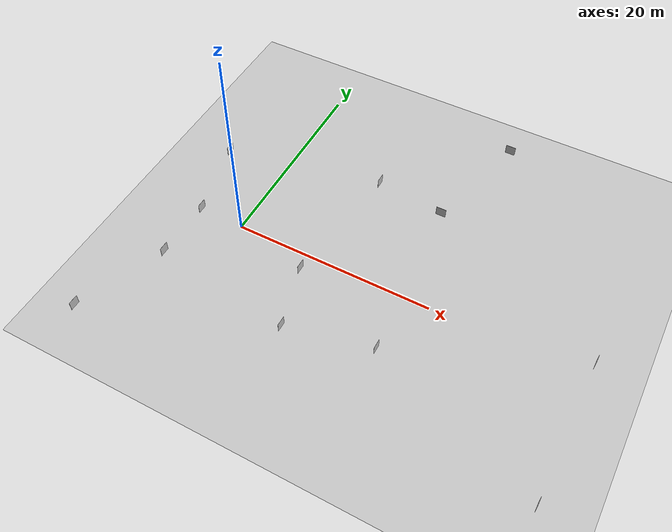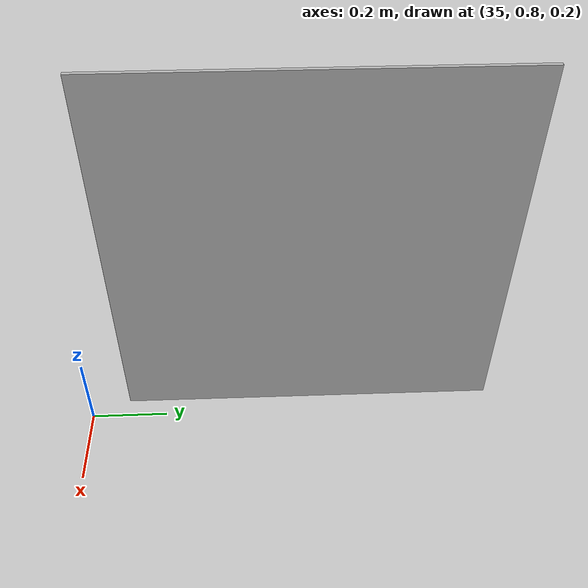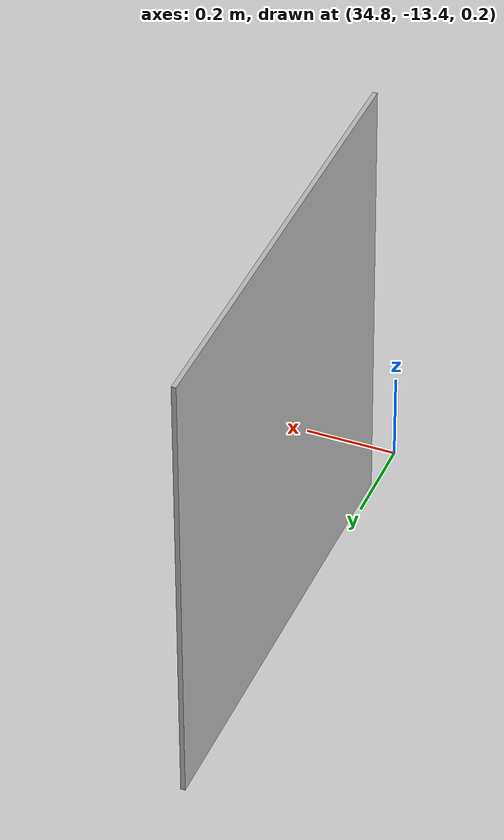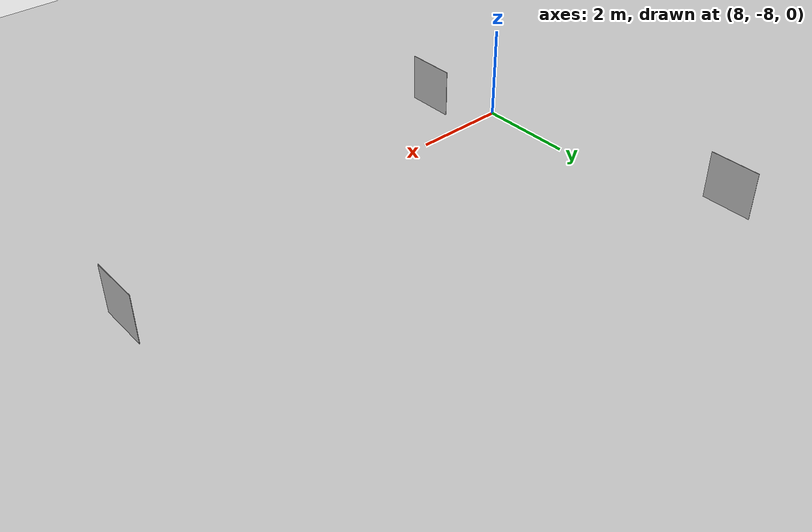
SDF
<sdf version="1.7">
 <world name="default">
  <light name="sun" type="directional">
   <pose>0 0 10 0 -0 0</pose>
   <diffuse>0.8 0.8 0.8 1</diffuse>
   <specular>0.2 0.2 0.2 1</specular>
   <attenuation>
    <range>1000</range>
    <constant>0.9</constant>
    <linear>0.01</linear>
    <quadratic>0.001</quadratic>
   </attenuation>
   <direction>-0.5 0.1 -0.9</direction>
   <spot><inner_angle>0</inner_angle><outer_angle>0</outer_angle><falloff>0</falloff></spot>
  </light>
  <model name="ground_plane">
   <static>1</static>
   <link name="link">
    <collision name="collision">
     <geometry><plane><normal>0 0 1</normal><size>100 100</size></plane></geometry>
     <surface>
      <contact><collide_bitmask>65535</collide_bitmask></contact>
      <friction><ode><mu>100</mu><mu2>50</mu2></ode></friction>
     </surface>
    </collision>
    <visual name="visual">
     <cast_shadows>0</cast_shadows>
     <geometry><plane><normal>0 0 1</normal><size>100 100</size></plane></geometry>
     <material>
      <script><uri>file://media/materials/scripts/gazebo.material</uri><name>Gazebo/Grey</name></script>
     </material>
    </visual>
   </link>
  </model>
  <gravity>0 0 -9.8</gravity>
  <magnetic_field>6e-06 2.3e-05 -4.2e-05</magnetic_field>
  <atmosphere type="adiabatic"/>
  <physics type="ode">
   <max_step_size>0.001</max_step_size>
   <real_time_factor>1</real_time_factor>
   <real_time_update_rate>1000</real_time_update_rate>
  </physics>
  <scene><ambient>0.4 0.4 0.4 1</ambient><background>0.7 0.7 0.7 1</background><shadows>1</shadows></scene>
  <spherical_coordinates>
   <surface_model>EARTH_WGS84</surface_model>
   <latitude_deg>0</latitude_deg>
   <longitude_deg>0</longitude_deg>
   <elevation>0</elevation>
   <heading_deg>0</heading_deg>
  </spherical_coordinates>
  <model name="Apriltag36_11_00000">
   <link name="main">
    <visual name="main_Visual">
     <geometry><box><size>1 1 0.01</size></box></geometry>
     <material>
      <script>
       <uri>model://Apriltag36_11_00000/materials/scripts</uri>
       <uri>model://Apriltag36_11_00000/materials/textures</uri>
       <name>Apriltag36_11_00000</name>
      </script>
     </material>
    </visual>
   </link>
   <static>1</static>
   <pose>7.8538 -2.0818 1.02235 3.14159 -1.57079 3.14159</pose>
  </model>
  <model name="Apriltag36_11_00001">
   <link name="main">
    <visual name="main_Visual">
     <geometry><box><size>1 1 0.01</size></box></geometry>
     <material>
      <script>
       <uri>model://Apriltag36_11_00001/materials/scripts</uri>
       <uri>model://Apriltag36_11_00001/materials/textures</uri>
       <name>Apriltag36_11_00001</name>
      </script>
     </material>
    </visual>
   </link>
   <static>1</static>
   <pose>17.8928 -6.47652 1.09329 3.14159 -1.57079 3.14159</pose>
  </model>
  <model name="Apriltag36_11_00002">
   <link name="main">
    <visual name="main_Visual">
     <geometry><box><size>1 1 0.01</size></box></geometry>
     <material>
      <script>
       <uri>model://Apriltag36_11_00002/materials/scripts</uri>
       <uri>model://Apriltag36_11_00002/materials/textures</uri>
       <name>Apriltag36_11_00002</name>
      </script>
     </material>
    </visual>
   </link>
   <static>1</static>
   <pose>-4.45813 -6.32386 0.888378 3.14159 1.57079 3.14159</pose>
  </model>
  <model name="Apriltag36_11_00003">
   <link name="main">
    <visual name="main_Visual">
     <geometry><box><size>1 1 0.01</size></box></geometry>
     <material>
      <script>
       <uri>model://Apriltag36_11_00003/materials/scripts</uri>
       <uri>model://Apriltag36_11_00003/materials/textures</uri>
       <name>Apriltag36_11_00003</name>
      </script>
     </material>
    </visual>
   </link>
   <static>1</static>
   <pose>9.53567 -8.4015 1.10666 3.14159 1.57079 3.14159</pose>
  </model>
  <model name="Apriltag36_11_00004">
   <link name="main">
    <visual name="main_Visual">
     <geometry><box><size>1 1 0.01</size></box></geometry>
     <material>
      <script>
       <uri>model://Apriltag36_11_00004/materials/scripts</uri>
       <uri>model://Apriltag36_11_00004/materials/textures</uri>
       <name>Apriltag36_11_00004</name>
      </script>
     </material>
    </visual>
   </link>
   <static>1</static>
   <pose>-4.39617 -0.127845 0.819497 3.14159 1.57079 3.14159</pose>
  </model>
  <model name="Apriltag36_11_00005">
   <link name="main">
    <visual name="main_Visual">
     <geometry><box><size>1 1 0.01</size></box></geometry>
     <material>
      <script>
       <uri>model://Apriltag36_11_00005/materials/scripts</uri>
       <uri>model://Apriltag36_11_00005/materials/textures</uri>
       <name>Apriltag36_11_00005</name>
      </script>
     </material>
    </visual>
   </link>
   <static>1</static>
   <pose>-7.87871 -15.2333 0.976245 3.14159 1.57079 3.14159</pose>
  </model>
  <model name="Apriltag36_11_00006">
   <link name="main">
    <visual name="main_Visual">
     <geometry><box><size>1 1 0.01</size></box></geometry>
     <material>
      <script>
       <uri>model://Apriltag36_11_00006/materials/scripts</uri>
       <uri>model://Apriltag36_11_00006/materials/textures</uri>
       <name>Apriltag36_11_00006</name>
      </script>
     </material>
    </visual>
   </link>
   <static>1</static>
   <pose>34.8206 -12.8038 0.684897 3.14159 -1.57079 3.14159</pose>
  </model>
  <model name="Apriltag36_11_00007">
   <link name="main">
    <visual name="main_Visual">
     <geometry><box><size>1 1 0.01</size></box></geometry>
     <material>
      <script>
       <uri>model://Apriltag36_11_00007/materials/scripts</uri>
       <uri>model://Apriltag36_11_00007/materials/textures</uri>
       <name>Apriltag36_11_00007</name>
      </script>
     </material>
    </visual>
   </link>
   <static>1</static>
   <pose>16.4496 10.5206 0.677005 1.5708 -0 0</pose>
  </model>
  <model name="Apriltag36_11_00008">
   <link name="main">
    <visual name="main_Visual">
     <geometry><box><size>1 1 0.01</size></box></geometry>
     <material>
      <script>
       <uri>model://Apriltag36_11_00008/materials/scripts</uri>
       <uri>model://Apriltag36_11_00008/materials/textures</uri>
       <name>Apriltag36_11_00008</name>
      </script>
     </material>
    </visual>
   </link>
   <static>1</static>
   <pose>-6.22691 7.83221 0.85142 3.14159 1.57079 3.14159</pose>
  </model>
  <model name="Apriltag36_11_00009">
   <link name="main">
    <visual name="main_Visual">
     <geometry><box><size>1 1 0.01</size></box></geometry>
     <material>
      <script>
       <uri>model://Apriltag36_11_00009/materials/scripts</uri>
       <uri>model://Apriltag36_11_00009/materials/textures</uri>
       <name>Apriltag36_11_00009</name>
      </script>
     </material>
    </visual>
   </link>
   <static>1</static>
   <pose>9.41373 11.3571 0.677151 3.14159 -1.57079 3.14159</pose>
  </model>
  <model name="Apriltag36_11_00010">
   <link name="main">
    <visual name="main_Visual">
     <geometry><box><size>1 1 0.01</size></box></geometry>
     <material>
      <script>
       <uri>model://Apriltag36_11_00010/materials/scripts</uri>
       <uri>model://Apriltag36_11_00010/materials/textures</uri>
       <name>Apriltag36_11_00010</name>
      </script>
     </material>
    </visual>
   </link>
   <static>1</static>
   <pose>19.372 21.6928 0.746762 1.5708 -0 0</pose>
  </model>
  <model name="Apriltag36_11_00011">
   <link name="main">
    <visual name="main_Visual">
     <geometry><box><size>1 1 0.01</size></box></geometry>
     <material>
      <script>
       <uri>model://Apriltag36_11_00011/materials/scripts</uri>
       <uri>model://Apriltag36_11_00011/materials/textures</uri>
       <name>Apriltag36_11_00011</name>
      </script>
     </material>
    </visual>
   </link>
   <static>1</static>
   <pose>34.9308 1.39108 0.683431 3.14159 -1.57079 3.14159</pose>
  </model>
 </world>
</sdf>
